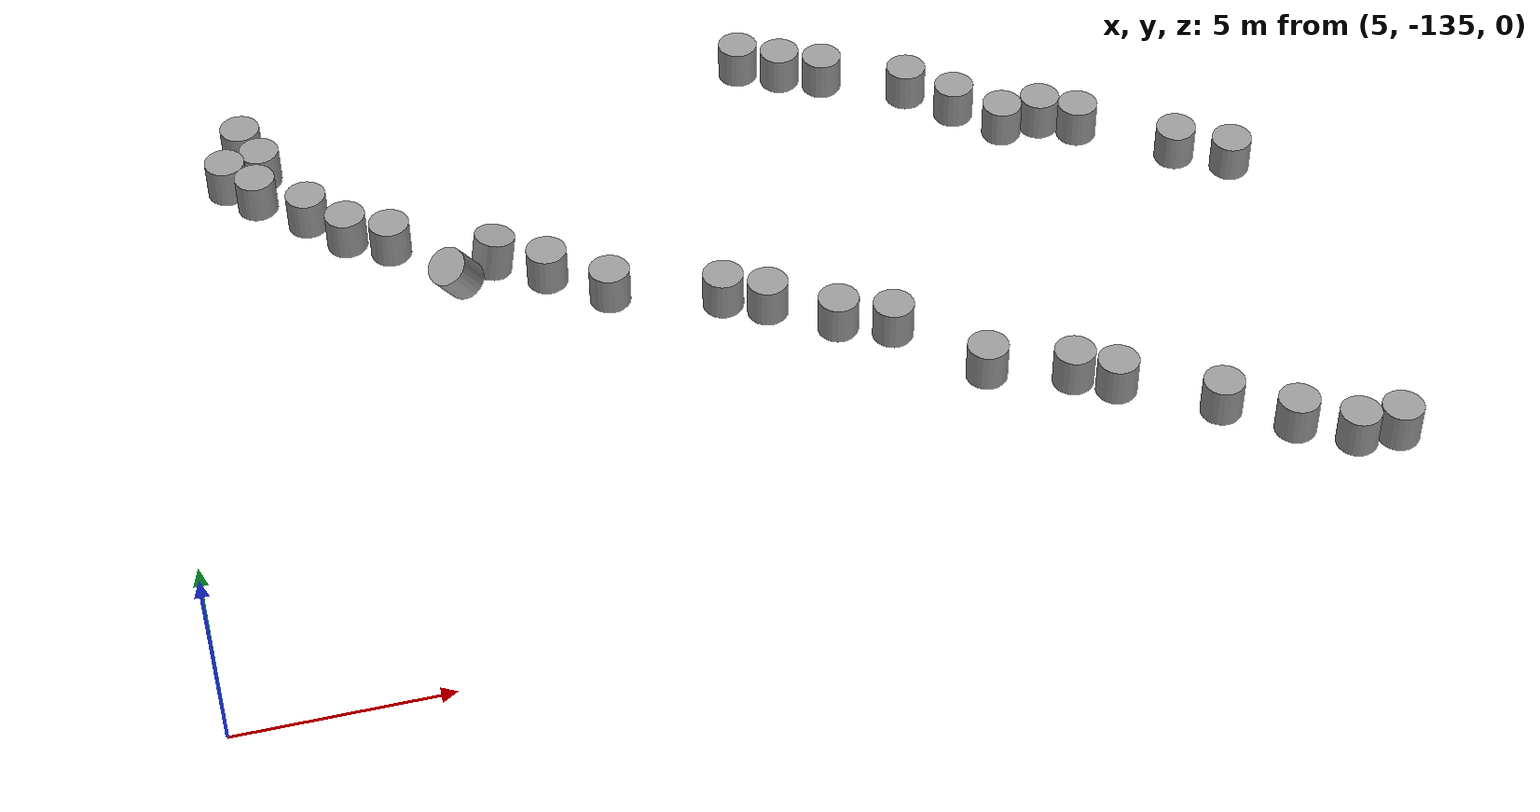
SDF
<sdf version="1.7">
 <world name="default">
  <model name="unit_cylinder_85_clone_244_clone_1023">
   <pose>32.2177 -122.774 0.438514 0.045814 -0.022296 -0.000201</pose>
   <link name="link">
    <inertial>
     <mass>1</mass>
     <inertia><ixx>0.145833</ixx><ixy>0</ixy><ixz>0</ixz><iyy>0.145833</iyy><iyz>0</iyz><izz>0.125</izz></inertia>
    </inertial>
    <collision name="collision">
     <geometry><cylinder><radius>0.5</radius><length>1</length></cylinder></geometry>
    </collision>
    <visual name="visual">
     <geometry><cylinder><radius>0.5</radius><length>1</length></cylinder></geometry>
     <material>
      <script><name>Gazebo/Grey</name><uri>file://media/materials/scripts/gazebo.material</uri></script>
     </material>
    </visual>
   </link>
  </model>
  <model name="unit_cylinder_85_clone_244_clone_1024">
   <pose>30.9893 -122.023 0.445653 0.044608 -0.021649 -0.001296</pose>
   <link name="link">
    <inertial>
     <mass>1</mass>
     <inertia><ixx>0.145833</ixx><ixy>0</ixy><ixz>0</ixz><iyy>0.145833</iyy><iyz>0</iyz><izz>0.125</izz></inertia>
    </inertial>
    <collision name="collision">
     <geometry><cylinder><radius>0.5</radius><length>1</length></cylinder></geometry>
    </collision>
    <visual name="visual">
     <geometry><cylinder><radius>0.5</radius><length>1</length></cylinder></geometry>
     <material>
      <script><name>Gazebo/Grey</name><uri>file://media/materials/scripts/gazebo.material</uri></script>
     </material>
    </visual>
   </link>
  </model>
  <model name="unit_cylinder_85_clone_244_clone_1025">
   <pose>28.8529 -120.522 0.451408 2.6e-05 -3.4e-05 0.000307</pose>
   <link name="link">
    <inertial>
     <mass>1</mass>
     <inertia><ixx>0.145833</ixx><ixy>0</ixy><ixz>0</ixz><iyy>0.145833</iyy><iyz>0</iyz><izz>0.125</izz></inertia>
    </inertial>
    <collision name="collision">
     <geometry><cylinder><radius>0.5</radius><length>1</length></cylinder></geometry>
    </collision>
    <visual name="visual">
     <geometry><cylinder><radius>0.5</radius><length>1</length></cylinder></geometry>
     <material>
      <script><name>Gazebo/Grey</name><uri>file://media/materials/scripts/gazebo.material</uri></script>
     </material>
    </visual>
   </link>
  </model>
  <model name="unit_cylinder_85_clone_244_clone_1026">
   <pose>28 -120 0.451389 1.6e-05 -2.7e-05 0.000587</pose>
   <link name="link">
    <inertial>
     <mass>1</mass>
     <inertia><ixx>0.145833</ixx><ixy>0</ixy><ixz>0</ixz><iyy>0.145833</iyy><iyz>0</iyz><izz>0.125</izz></inertia>
    </inertial>
    <collision name="collision">
     <geometry><cylinder><radius>0.5</radius><length>1</length></cylinder></geometry>
    </collision>
    <visual name="visual">
     <geometry><cylinder><radius>0.5</radius><length>1</length></cylinder></geometry>
     <material>
      <script><name>Gazebo/Grey</name><uri>file://media/materials/scripts/gazebo.material</uri></script>
     </material>
    </visual>
   </link>
  </model>
  <model name="unit_cylinder_85_clone_244_clone_1027">
   <pose>26.9914 -120.018 0.448965 0.033689 -0.016419 0.000226</pose>
   <link name="link">
    <inertial>
     <mass>1</mass>
     <inertia><ixx>0.145833</ixx><ixy>0</ixy><ixz>0</ixz><iyy>0.145833</iyy><iyz>0</iyz><izz>0.125</izz></inertia>
    </inertial>
    <collision name="collision">
     <geometry><cylinder><radius>0.5</radius><length>1</length></cylinder></geometry>
    </collision>
    <visual name="visual">
     <geometry><cylinder><radius>0.5</radius><length>1</length></cylinder></geometry>
     <material>
      <script><name>Gazebo/Grey</name><uri>file://media/materials/scripts/gazebo.material</uri></script>
     </material>
    </visual>
   </link>
  </model>
  <model name="unit_cylinder_85_clone_244_clone_1028">
   <pose>26 -119 0.451344 2.5e-05 -3.7e-05 0.000507</pose>
   <link name="link">
    <inertial>
     <mass>1</mass>
     <inertia><ixx>0.145833</ixx><ixy>0</ixy><ixz>0</ixz><iyy>0.145833</iyy><iyz>0</iyz><izz>0.125</izz></inertia>
    </inertial>
    <collision name="collision">
     <geometry><cylinder><radius>0.5</radius><length>1</length></cylinder></geometry>
    </collision>
    <visual name="visual">
     <geometry><cylinder><radius>0.5</radius><length>1</length></cylinder></geometry>
     <material>
      <script><name>Gazebo/Grey</name><uri>file://media/materials/scripts/gazebo.material</uri></script>
     </material>
    </visual>
   </link>
  </model>
  <model name="unit_cylinder_85_clone_244_clone_1029">
   <pose>25 -118 0.45134 2.7e-05 -2.1e-05 0.000625</pose>
   <link name="link">
    <inertial>
     <mass>1</mass>
     <inertia><ixx>0.145833</ixx><ixy>0</ixy><ixz>0</ixz><iyy>0.145833</iyy><iyz>0</iyz><izz>0.125</izz></inertia>
    </inertial>
    <collision name="collision">
     <geometry><cylinder><radius>0.5</radius><length>1</length></cylinder></geometry>
    </collision>
    <visual name="visual">
     <geometry><cylinder><radius>0.5</radius><length>1</length></cylinder></geometry>
     <material>
      <script><name>Gazebo/Grey</name><uri>file://media/materials/scripts/gazebo.material</uri></script>
     </material>
    </visual>
   </link>
  </model>
  <model name="unit_cylinder_85_clone_244_clone_1030">
   <pose>23 -117 0.451324 2.6e-05 -9e-06 0.000506</pose>
   <link name="link">
    <inertial>
     <mass>1</mass>
     <inertia><ixx>0.145833</ixx><ixy>0</ixy><ixz>0</ixz><iyy>0.145833</iyy><iyz>0</iyz><izz>0.125</izz></inertia>
    </inertial>
    <collision name="collision">
     <geometry><cylinder><radius>0.5</radius><length>1</length></cylinder></geometry>
    </collision>
    <visual name="visual">
     <geometry><cylinder><radius>0.5</radius><length>1</length></cylinder></geometry>
     <material>
      <script><name>Gazebo/Grey</name><uri>file://media/materials/scripts/gazebo.material</uri></script>
     </material>
    </visual>
   </link>
  </model>
  <model name="unit_cylinder_85_clone_244_clone_1031">
   <pose>21.9918 -116.52 0.451325 2.8e-05 -1.2e-05 0.000505</pose>
   <link name="link">
    <inertial>
     <mass>1</mass>
     <inertia><ixx>0.145833</ixx><ixy>0</ixy><ixz>0</ixz><iyy>0.145833</iyy><iyz>0</iyz><izz>0.125</izz></inertia>
    </inertial>
    <collision name="collision">
     <geometry><cylinder><radius>0.5</radius><length>1</length></cylinder></geometry>
    </collision>
    <visual name="visual">
     <geometry><cylinder><radius>0.5</radius><length>1</length></cylinder></geometry>
     <material>
      <script><name>Gazebo/Grey</name><uri>file://media/materials/scripts/gazebo.material</uri></script>
     </material>
    </visual>
   </link>
  </model>
  <model name="unit_cylinder_85_clone_244_clone_1032">
   <pose>20.9994 -115.997 0.451318 2.8e-05 -1.4e-05 -0.004011</pose>
   <link name="link">
    <inertial>
     <mass>1</mass>
     <inertia><ixx>0.145833</ixx><ixy>0</ixy><ixz>0</ixz><iyy>0.145833</iyy><iyz>0</iyz><izz>0.125</izz></inertia>
    </inertial>
    <collision name="collision">
     <geometry><cylinder><radius>0.5</radius><length>1</length></cylinder></geometry>
    </collision>
    <visual name="visual">
     <geometry><cylinder><radius>0.5</radius><length>1</length></cylinder></geometry>
     <material>
      <script><name>Gazebo/Grey</name><uri>file://media/materials/scripts/gazebo.material</uri></script>
     </material>
    </visual>
   </link>
  </model>
  <model name="unit_cylinder_85_clone_244_clone_1037">
   <pose>31.7266 -132.757 0.41917 -0.0009 0.003195 -0.020788</pose>
   <link name="link">
    <inertial>
     <mass>1</mass>
     <inertia><ixx>0.145833</ixx><ixy>0</ixy><ixz>0</ixz><iyy>0.145833</iyy><iyz>0</iyz><izz>0.125</izz></inertia>
    </inertial>
    <collision name="collision">
     <geometry><cylinder><radius>0.5</radius><length>1</length></cylinder></geometry>
    </collision>
    <visual name="visual">
     <geometry><cylinder><radius>0.5</radius><length>1</length></cylinder></geometry>
     <material>
      <script><name>Gazebo/Grey</name><uri>file://media/materials/scripts/gazebo.material</uri></script>
     </material>
    </visual>
   </link>
  </model>
  <model name="unit_cylinder_85_clone_244_clone_1038">
   <pose>32.7403 -132.831 0.416115 -0.002414 0.003774 0.018169</pose>
   <link name="link">
    <inertial>
     <mass>1</mass>
     <inertia><ixx>0.145833</ixx><ixy>0</ixy><ixz>0</ixz><iyy>0.145833</iyy><iyz>0</iyz><izz>0.125</izz></inertia>
    </inertial>
    <collision name="collision">
     <geometry><cylinder><radius>0.5</radius><length>1</length></cylinder></geometry>
    </collision>
    <visual name="visual">
     <geometry><cylinder><radius>0.5</radius><length>1</length></cylinder></geometry>
     <material>
      <script><name>Gazebo/Grey</name><uri>file://media/materials/scripts/gazebo.material</uri></script>
     </material>
    </visual>
   </link>
  </model>
  <model name="unit_cylinder_85_clone_244_clone_1039">
   <pose>30.4899 -132 0.422541 -0.000627 0.00311 0.001763</pose>
   <link name="link">
    <inertial>
     <mass>1</mass>
     <inertia><ixx>0.145833</ixx><ixy>0</ixy><ixz>0</ixz><iyy>0.145833</iyy><iyz>0</iyz><izz>0.125</izz></inertia>
    </inertial>
    <collision name="collision">
     <geometry><cylinder><radius>0.5</radius><length>1</length></cylinder></geometry>
    </collision>
    <visual name="visual">
     <geometry><cylinder><radius>0.5</radius><length>1</length></cylinder></geometry>
     <material>
      <script><name>Gazebo/Grey</name><uri>file://media/materials/scripts/gazebo.material</uri></script>
     </material>
    </visual>
   </link>
  </model>
  <model name="unit_cylinder_85_clone_244_clone_1040">
   <pose>29.0015 -131 0.42653 -0.000311 0.003011 0.000509</pose>
   <link name="link">
    <inertial>
     <mass>1</mass>
     <inertia><ixx>0.145833</ixx><ixy>0</ixy><ixz>0</ixz><iyy>0.145833</iyy><iyz>0</iyz><izz>0.125</izz></inertia>
    </inertial>
    <collision name="collision">
     <geometry><cylinder><radius>0.5</radius><length>1</length></cylinder></geometry>
    </collision>
    <visual name="visual">
     <geometry><cylinder><radius>0.5</radius><length>1</length></cylinder></geometry>
     <material>
      <script><name>Gazebo/Grey</name><uri>file://media/materials/scripts/gazebo.material</uri></script>
     </material>
    </visual>
   </link>
  </model>
  <model name="unit_cylinder_85_clone_244_clone_1041">
   <pose>26.8353 -129.711 0.432472 6e-06 0.002804 -0.001633</pose>
   <link name="link">
    <inertial>
     <mass>1</mass>
     <inertia><ixx>0.145833</ixx><ixy>0</ixy><ixz>0</ixz><iyy>0.145833</iyy><iyz>0</iyz><izz>0.125</izz></inertia>
    </inertial>
    <collision name="collision">
     <geometry><cylinder><radius>0.5</radius><length>1</length></cylinder></geometry>
    </collision>
    <visual name="visual">
     <geometry><cylinder><radius>0.5</radius><length>1</length></cylinder></geometry>
     <material>
      <script><name>Gazebo/Grey</name><uri>file://media/materials/scripts/gazebo.material</uri></script>
     </material>
    </visual>
   </link>
  </model>
  <model name="unit_cylinder_85_clone_244_clone_1042">
   <pose>25.937 -129.157 0.434921 0.000118 0.002715 -0.014648</pose>
   <link name="link">
    <inertial>
     <mass>1</mass>
     <inertia><ixx>0.145833</ixx><ixy>0</ixy><ixz>0</ixz><iyy>0.145833</iyy><iyz>0</iyz><izz>0.125</izz></inertia>
    </inertial>
    <collision name="collision">
     <geometry><cylinder><radius>0.5</radius><length>1</length></cylinder></geometry>
    </collision>
    <visual name="visual">
     <geometry><cylinder><radius>0.5</radius><length>1</length></cylinder></geometry>
     <material>
      <script><name>Gazebo/Grey</name><uri>file://media/materials/scripts/gazebo.material</uri></script>
     </material>
    </visual>
   </link>
  </model>
  <model name="unit_cylinder_85_clone_244_clone_1043">
   <pose>24.0014 -128.463 0.440007 -0.000108 0.002692 0.000586</pose>
   <link name="link">
    <inertial>
     <mass>1</mass>
     <inertia><ixx>0.145833</ixx><ixy>0</ixy><ixz>0</ixz><iyy>0.145833</iyy><iyz>0</iyz><izz>0.125</izz></inertia>
    </inertial>
    <collision name="collision">
     <geometry><cylinder><radius>0.5</radius><length>1</length></cylinder></geometry>
    </collision>
    <visual name="visual">
     <geometry><cylinder><radius>0.5</radius><length>1</length></cylinder></geometry>
     <material>
      <script><name>Gazebo/Grey</name><uri>file://media/materials/scripts/gazebo.material</uri></script>
     </material>
    </visual>
   </link>
  </model>
  <model name="unit_cylinder_85_clone_244_clone_1044">
   <pose>22.2291 -126.522 0.445277 0.001311 0.00206 0.099668</pose>
   <link name="link">
    <inertial>
     <mass>1</mass>
     <inertia><ixx>0.145833</ixx><ixy>0</ixy><ixz>0</ixz><iyy>0.145833</iyy><iyz>0</iyz><izz>0.125</izz></inertia>
    </inertial>
    <collision name="collision">
     <geometry><cylinder><radius>0.5</radius><length>1</length></cylinder></geometry>
    </collision>
    <visual name="visual">
     <geometry><cylinder><radius>0.5</radius><length>1</length></cylinder></geometry>
     <material>
      <script><name>Gazebo/Grey</name><uri>file://media/materials/scripts/gazebo.material</uri></script>
     </material>
    </visual>
   </link>
  </model>
  <model name="unit_cylinder_85_clone_244_clone_1046">
   <pose>21.0013 -126.001 0.448509 0.001133 0.002121 0.000547</pose>
   <link name="link">
    <inertial>
     <mass>1</mass>
     <inertia><ixx>0.145833</ixx><ixy>0</ixy><ixz>0</ixz><iyy>0.145833</iyy><iyz>0</iyz><izz>0.125</izz></inertia>
    </inertial>
    <collision name="collision">
     <geometry><cylinder><radius>0.5</radius><length>1</length></cylinder></geometry>
    </collision>
    <visual name="visual">
     <geometry><cylinder><radius>0.5</radius><length>1</length></cylinder></geometry>
     <material>
      <script><name>Gazebo/Grey</name><uri>file://media/materials/scripts/gazebo.material</uri></script>
     </material>
    </visual>
   </link>
  </model>
  <model name="unit_cylinder_85_clone_244_clone_1047">
   <pose>19.5019 -125 0.451378 -0.000205 0.00013 0.000515</pose>
   <link name="link">
    <inertial>
     <mass>1</mass>
     <inertia><ixx>0.145833</ixx><ixy>0</ixy><ixz>0</ixz><iyy>0.145833</iyy><iyz>0</iyz><izz>0.125</izz></inertia>
    </inertial>
    <collision name="collision">
     <geometry><cylinder><radius>0.5</radius><length>1</length></cylinder></geometry>
    </collision>
    <visual name="visual">
     <geometry><cylinder><radius>0.5</radius><length>1</length></cylinder></geometry>
     <material>
      <script><name>Gazebo/Grey</name><uri>file://media/materials/scripts/gazebo.material</uri></script>
     </material>
    </visual>
   </link>
  </model>
  <model name="unit_cylinder_85_clone_244_clone_1048">
   <pose>18.5118 -124.483 0.451398 -0.000207 0.000134 0.000517</pose>
   <link name="link">
    <inertial>
     <mass>1</mass>
     <inertia><ixx>0.145833</ixx><ixy>0</ixy><ixz>0</ixz><iyy>0.145833</iyy><iyz>0</iyz><izz>0.125</izz></inertia>
    </inertial>
    <collision name="collision">
     <geometry><cylinder><radius>0.5</radius><length>1</length></cylinder></geometry>
    </collision>
    <visual name="visual">
     <geometry><cylinder><radius>0.5</radius><length>1</length></cylinder></geometry>
     <material>
      <script><name>Gazebo/Grey</name><uri>file://media/materials/scripts/gazebo.material</uri></script>
     </material>
    </visual>
   </link>
  </model>
  <model name="unit_cylinder_85_clone_244_clone_1049">
   <pose>15.8896 -123.606 0.451569 -0.000212 0.000126 0.000517</pose>
   <link name="link">
    <inertial>
     <mass>1</mass>
     <inertia><ixx>0.145833</ixx><ixy>0</ixy><ixz>0</ixz><iyy>0.145833</iyy><iyz>0</iyz><izz>0.125</izz></inertia>
    </inertial>
    <collision name="collision">
     <geometry><cylinder><radius>0.5</radius><length>1</length></cylinder></geometry>
    </collision>
    <visual name="visual">
     <geometry><cylinder><radius>0.5</radius><length>1</length></cylinder></geometry>
     <material>
      <script><name>Gazebo/Grey</name><uri>file://media/materials/scripts/gazebo.material</uri></script>
     </material>
    </visual>
   </link>
  </model>
  <model name="unit_cylinder_85_clone_244_clone_1050">
   <pose>14.5463 -122.55 0.451526 -0.000188 0.000128 0.000514</pose>
   <link name="link">
    <inertial>
     <mass>1</mass>
     <inertia><ixx>0.145833</ixx><ixy>0</ixy><ixz>0</ixz><iyy>0.145833</iyy><iyz>0</iyz><izz>0.125</izz></inertia>
    </inertial>
    <collision name="collision">
     <geometry><cylinder><radius>0.5</radius><length>1</length></cylinder></geometry>
    </collision>
    <visual name="visual">
     <geometry><cylinder><radius>0.5</radius><length>1</length></cylinder></geometry>
     <material>
      <script><name>Gazebo/Grey</name><uri>file://media/materials/scripts/gazebo.material</uri></script>
     </material>
    </visual>
   </link>
  </model>
  <model name="unit_cylinder_85_clone_244_clone_1065">
   <pose>7.95065 -115.84 0.250001 2e-06 2e-06 0.24805</pose>
   <link name="link">
    <inertial>
     <mass>1</mass>
     <inertia><ixx>0.145833</ixx><ixy>0</ixy><ixz>0</ixz><iyy>0.145833</iyy><iyz>0</iyz><izz>0.125</izz></inertia>
    </inertial>
    <collision name="collision">
     <geometry><cylinder><radius>0.5</radius><length>1</length></cylinder></geometry>
    </collision>
    <visual name="visual">
     <geometry><cylinder><radius>0.5</radius><length>1</length></cylinder></geometry>
     <material>
      <script><name>Gazebo/Grey</name><uri>file://media/materials/scripts/gazebo.material</uri></script>
     </material>
    </visual>
   </link>
  </model>
  <model name="unit_cylinder_85_clone_244_clone_1066">
   <pose>8.29798 -116.823 0.25 0 -0 0.22919</pose>
   <link name="link">
    <inertial>
     <mass>1</mass>
     <inertia><ixx>0.145833</ixx><ixy>0</ixy><ixz>0</ixz><iyy>0.145833</iyy><iyz>0</iyz><izz>0.125</izz></inertia>
    </inertial>
    <collision name="collision">
     <geometry><cylinder><radius>0.5</radius><length>1</length></cylinder></geometry>
    </collision>
    <visual name="visual">
     <geometry><cylinder><radius>0.5</radius><length>1</length></cylinder></geometry>
     <material>
      <script><name>Gazebo/Grey</name><uri>file://media/materials/scripts/gazebo.material</uri></script>
     </material>
    </visual>
   </link>
  </model>
  <model name="unit_cylinder_85_clone_244_clone_1067">
   <pose>7.39079 -117.3 0.451347 -0.000265 0.000121 -0.132377</pose>
   <link name="link">
    <inertial>
     <mass>1</mass>
     <inertia><ixx>0.145833</ixx><ixy>0</ixy><ixz>0</ixz><iyy>0.145833</iyy><iyz>0</iyz><izz>0.125</izz></inertia>
    </inertial>
    <collision name="collision">
     <geometry><cylinder><radius>0.5</radius><length>1</length></cylinder></geometry>
    </collision>
    <visual name="visual">
     <geometry><cylinder><radius>0.5</radius><length>1</length></cylinder></geometry>
     <material>
      <script><name>Gazebo/Grey</name><uri>file://media/materials/scripts/gazebo.material</uri></script>
     </material>
    </visual>
   </link>
  </model>
  <model name="unit_cylinder_85_clone_244_clone_1068">
   <pose>8.04069 -118.065 0.451428 -0.000231 0.000168 0.072028</pose>
   <link name="link">
    <inertial>
     <mass>1</mass>
     <inertia><ixx>0.145833</ixx><ixy>0</ixy><ixz>0</ixz><iyy>0.145833</iyy><iyz>0</iyz><izz>0.125</izz></inertia>
    </inertial>
    <collision name="collision">
     <geometry><cylinder><radius>0.5</radius><length>1</length></cylinder></geometry>
    </collision>
    <visual name="visual">
     <geometry><cylinder><radius>0.5</radius><length>1</length></cylinder></geometry>
     <material>
      <script><name>Gazebo/Grey</name><uri>file://media/materials/scripts/gazebo.material</uri></script>
     </material>
    </visual>
   </link>
  </model>
  <model name="unit_cylinder_85_clone_244_clone_1069">
   <pose>9.17202 -119.03 0.451483 -0.000234 0.000149 0.000514</pose>
   <link name="link">
    <inertial>
     <mass>1</mass>
     <inertia><ixx>0.145833</ixx><ixy>0</ixy><ixz>0</ixz><iyy>0.145833</iyy><iyz>0</iyz><izz>0.125</izz></inertia>
    </inertial>
    <collision name="collision">
     <geometry><cylinder><radius>0.5</radius><length>1</length></cylinder></geometry>
    </collision>
    <visual name="visual">
     <geometry><cylinder><radius>0.5</radius><length>1</length></cylinder></geometry>
     <material>
      <script><name>Gazebo/Grey</name><uri>file://media/materials/scripts/gazebo.material</uri></script>
     </material>
    </visual>
   </link>
  </model>
  <model name="unit_cylinder_85_clone_244_clone_1070">
   <pose>11.0001 -120.586 0.451584 -0.000212 0.000125 0.00052</pose>
   <link name="link">
    <inertial>
     <mass>1</mass>
     <inertia><ixx>0.145833</ixx><ixy>0</ixy><ixz>0</ixz><iyy>0.145833</iyy><iyz>0</iyz><izz>0.125</izz></inertia>
    </inertial>
    <collision name="collision">
     <geometry><cylinder><radius>0.5</radius><length>1</length></cylinder></geometry>
    </collision>
    <visual name="visual">
     <geometry><cylinder><radius>0.5</radius><length>1</length></cylinder></geometry>
     <material>
      <script><name>Gazebo/Grey</name><uri>file://media/materials/scripts/gazebo.material</uri></script>
     </material>
    </visual>
   </link>
  </model>
  <model name="unit_cylinder_85_clone_244_clone_1071">
   <pose>12.3169 -122.485 0.64666 0.343338 -0.500965 -0.099016</pose>
   <link name="link">
    <inertial>
     <mass>1</mass>
     <inertia><ixx>0.145833</ixx><ixy>0</ixy><ixz>0</ixz><iyy>0.145833</iyy><iyz>0</iyz><izz>0.125</izz></inertia>
    </inertial>
    <collision name="collision">
     <geometry><cylinder><radius>0.5</radius><length>1</length></cylinder></geometry>
    </collision>
    <visual name="visual">
     <geometry><cylinder><radius>0.5</radius><length>1</length></cylinder></geometry>
     <material>
      <script><name>Gazebo/Grey</name><uri>file://media/materials/scripts/gazebo.material</uri></script>
     </material>
    </visual>
   </link>
  </model>
  <model name="unit_cylinder_85_clone_244_clone_1072">
   <pose>13.3429 -121.845 0.539409 -0.103231 0.167417 0.003278</pose>
   <link name="link">
    <inertial>
     <mass>1</mass>
     <inertia><ixx>0.145833</ixx><ixy>0</ixy><ixz>0</ixz><iyy>0.145833</iyy><iyz>0</iyz><izz>0.125</izz></inertia>
    </inertial>
    <collision name="collision">
     <geometry><cylinder><radius>0.5</radius><length>1</length></cylinder></geometry>
    </collision>
    <visual name="visual">
     <geometry><cylinder><radius>0.5</radius><length>1</length></cylinder></geometry>
     <material>
      <script><name>Gazebo/Grey</name><uri>file://media/materials/scripts/gazebo.material</uri></script>
     </material>
    </visual>
   </link>
  </model>
  <model name="unit_cylinder_85_clone_244_clone_1073">
   <pose>10.0001 -120 0.451591 -0.000208 0.000128 0.00051</pose>
   <link name="link">
    <inertial>
     <mass>1</mass>
     <inertia><ixx>0.145833</ixx><ixy>0</ixy><ixz>0</ixz><iyy>0.145833</iyy><iyz>0</iyz><izz>0.125</izz></inertia>
    </inertial>
    <collision name="collision">
     <geometry><cylinder><radius>0.5</radius><length>1</length></cylinder></geometry>
    </collision>
    <visual name="visual">
     <geometry><cylinder><radius>0.5</radius><length>1</length></cylinder></geometry>
     <material>
      <script><name>Gazebo/Grey</name><uri>file://media/materials/scripts/gazebo.material</uri></script>
     </material>
    </visual>
   </link>
  </model>
 </world>
</sdf>
